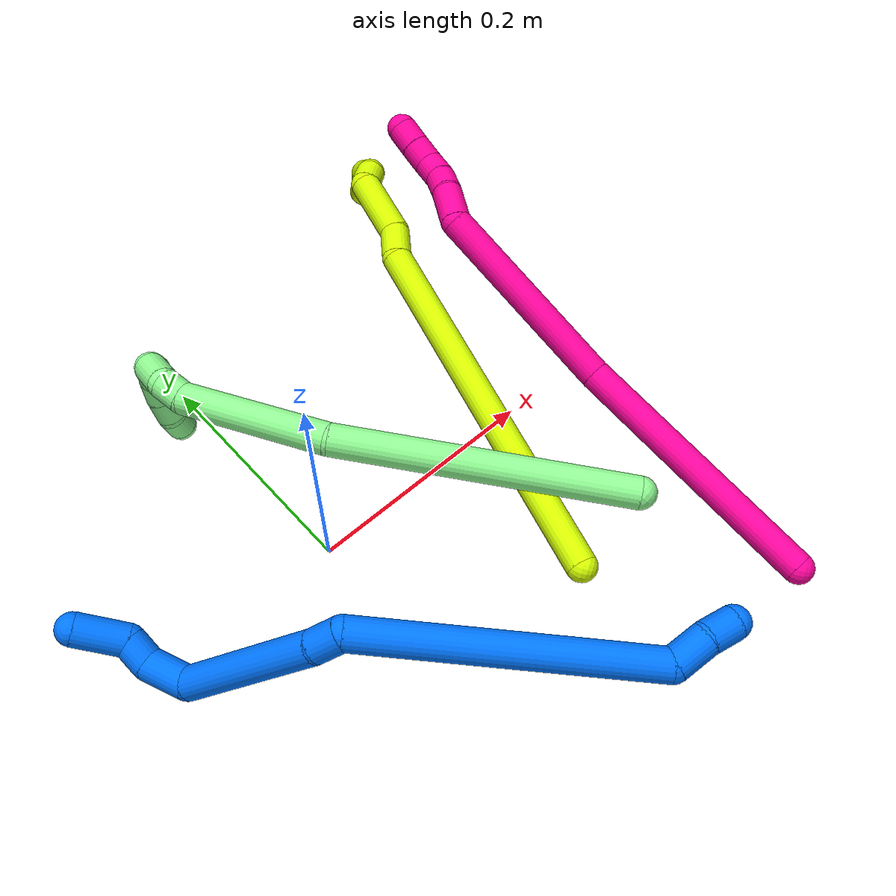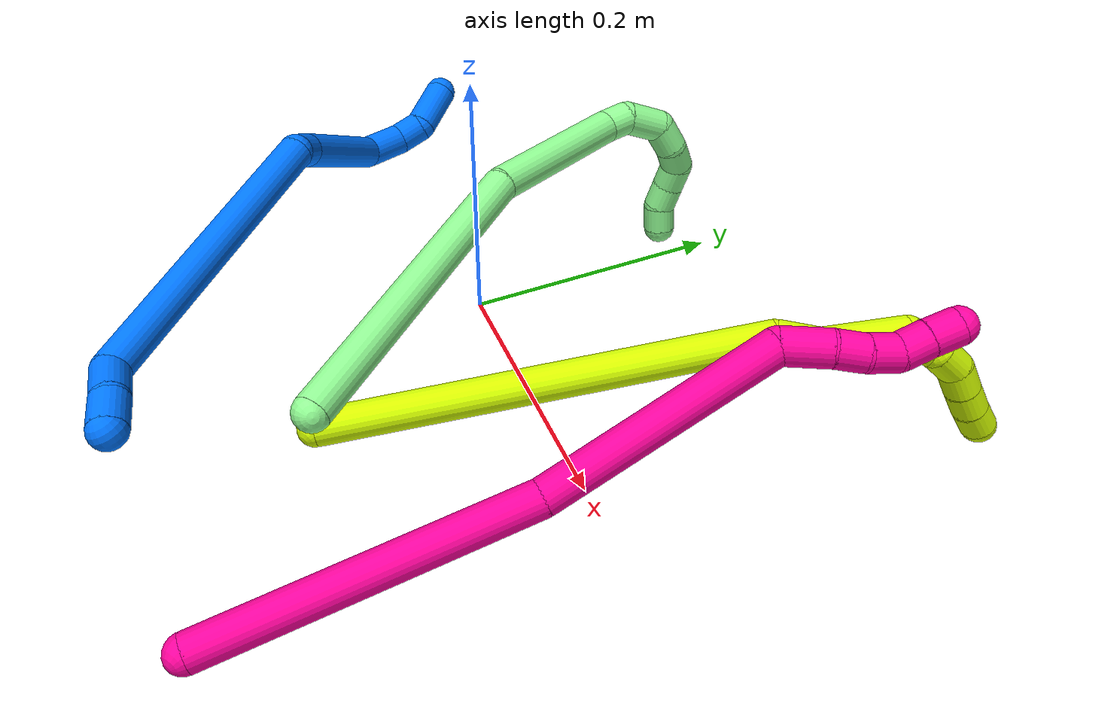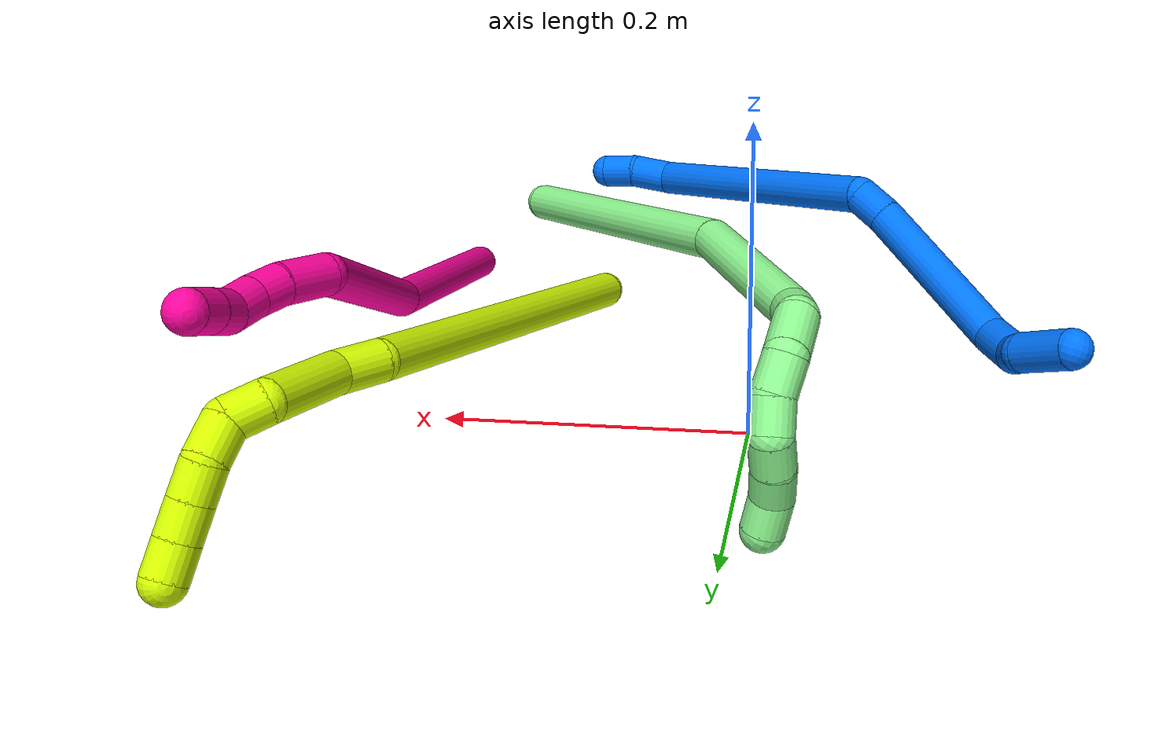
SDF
<sdf version="1.7">
 <world name="default">
  <model name="13">
   <static>0</static>
   <link name="13">
    <collision name="collision-cylinder-e_1_1_4">
     <pose>-0.063509 0.066194 -0.066411 -2.35783 -0.595341 1.27719</pose>
     <geometry><cylinder><radius>0.0125</radius><length>0.226499</length></cylinder></geometry>
     <surface>
      <friction><ode><mu>1.16</mu><mu2>1.16</mu2><slip1>0</slip1><slip2>0</slip2></ode></friction>
      <contact><ode><kp>1e+06</kp><kd>1</kd><max_vel>0</max_vel><min_depth>0.001</min_depth></ode></contact>
     </surface>
    </collision>
    <visual name="visual-cylinder-e_1_1_4">
     <pose>-0.063509 0.066194 -0.066411 -2.35783 -0.595341 1.27719</pose>
     <geometry><cylinder><radius>0.0125</radius><length>0.226499</length></cylinder></geometry>
     <material><ambient>0.564706 0.984314 0.572549 1</ambient></material>
    </visual>
    <collision name="collision-cylinder-e_2_4_5">
     <pose>-0.148864 0.179008 -0.164422 -2.1665 -0.370011 0.678594</pose>
     <geometry><cylinder><radius>0.0125</radius><length>0.120817</length></cylinder></geometry>
     <surface>
      <friction><ode><mu>1.16</mu><mu2>1.16</mu2><slip1>0</slip1><slip2>0</slip2></ode></friction>
      <contact><ode><kp>1e+06</kp><kd>1</kd><max_vel>0</max_vel><min_depth>0.001</min_depth></ode></contact>
     </surface>
    </collision>
    <visual name="visual-cylinder-e_2_4_5">
     <pose>-0.148864 0.179008 -0.164422 -2.1665 -0.370011 0.678594</pose>
     <geometry><cylinder><radius>0.0125</radius><length>0.120817</length></cylinder></geometry>
     <material><ambient>0.564706 0.984314 0.572549 1</ambient></material>
    </visual>
    <collision name="collision-cylinder-e_3_5_6">
     <pose>-0.174827 0.234618 -0.198076 -1.79528 -0.419905 0.522259</pose>
     <geometry><cylinder><radius>0.0125</radius><length>0.020201</length></cylinder></geometry>
     <surface>
      <friction><ode><mu>1.16</mu><mu2>1.16</mu2><slip1>0</slip1><slip2>0</slip2></ode></friction>
      <contact><ode><kp>1e+06</kp><kd>1</kd><max_vel>0</max_vel><min_depth>0.001</min_depth></ode></contact>
     </surface>
    </collision>
    <visual name="visual-cylinder-e_3_5_6">
     <pose>-0.174827 0.234618 -0.198076 -1.79528 -0.419905 0.522259</pose>
     <geometry><cylinder><radius>0.0125</radius><length>0.020201</length></cylinder></geometry>
     <material><ambient>0.564706 0.984314 0.572549 1</ambient></material>
    </visual>
    <collision name="collision-cylinder-e_4_6_7">
     <pose>-0.176651 0.258164 -0.202808 -1.75279 0.153752 -0.184468</pose>
     <geometry><cylinder><radius>0.0125</radius><length>0.029951</length></cylinder></geometry>
     <surface>
      <friction><ode><mu>1.16</mu><mu2>1.16</mu2><slip1>0</slip1><slip2>0</slip2></ode></friction>
      <contact><ode><kp>1e+06</kp><kd>1</kd><max_vel>0</max_vel><min_depth>0.001</min_depth></ode></contact>
     </surface>
    </collision>
    <visual name="visual-cylinder-e_4_6_7">
     <pose>-0.176651 0.258164 -0.202808 -1.75279 0.153752 -0.184468</pose>
     <geometry><cylinder><radius>0.0125</radius><length>0.029951</length></cylinder></geometry>
     <material><ambient>0.564706 0.984314 0.572549 1</ambient></material>
    </visual>
    <collision name="collision-cylinder-e_5_7_8">
     <pose>-0.166397 0.279789 -0.208129 -1.92848 0.811984 -1.1094</pose>
     <geometry><cylinder><radius>0.0125</radius><length>0.02194</length></cylinder></geometry>
     <surface>
      <friction><ode><mu>1.16</mu><mu2>1.16</mu2><slip1>0</slip1><slip2>0</slip2></ode></friction>
      <contact><ode><kp>1e+06</kp><kd>1</kd><max_vel>0</max_vel><min_depth>0.001</min_depth></ode></contact>
     </surface>
    </collision>
    <visual name="visual-cylinder-e_5_7_8">
     <pose>-0.166397 0.279789 -0.208129 -1.92848 0.811984 -1.1094</pose>
     <geometry><cylinder><radius>0.0125</radius><length>0.02194</length></cylinder></geometry>
     <material><ambient>0.564706 0.984314 0.572549 1</ambient></material>
    </visual>
    <collision name="collision-cylinder-e_6_8_9">
     <pose>-0.15125 0.292208 -0.215732 -2.31859 0.777973 -1.50809</pose>
     <geometry><cylinder><radius>0.0125</radius><length>0.02048</length></cylinder></geometry>
     <surface>
      <friction><ode><mu>1.16</mu><mu2>1.16</mu2><slip1>0</slip1><slip2>0</slip2></ode></friction>
      <contact><ode><kp>1e+06</kp><kd>1</kd><max_vel>0</max_vel><min_depth>0.001</min_depth></ode></contact>
     </surface>
    </collision>
    <visual name="visual-cylinder-e_6_8_9">
     <pose>-0.15125 0.292208 -0.215732 -2.31859 0.777973 -1.50809</pose>
     <geometry><cylinder><radius>0.0125</radius><length>0.02048</length></cylinder></geometry>
     <material><ambient>0.564706 0.984314 0.572549 1</ambient></material>
    </visual>
    <collision name="collision-cylinder-e_7_9_10">
     <pose>-0.135425 0.296707 -0.225746 2.97521 1.03534 2.85081</pose>
     <geometry><cylinder><radius>0.0125</radius><length>0.020088</length></cylinder></geometry>
     <surface>
      <friction><ode><mu>1.16</mu><mu2>1.16</mu2><slip1>0</slip1><slip2>0</slip2></ode></friction>
      <contact><ode><kp>1e+06</kp><kd>1</kd><max_vel>0</max_vel><min_depth>0.001</min_depth></ode></contact>
     </surface>
    </collision>
    <visual name="visual-cylinder-e_7_9_10">
     <pose>-0.135425 0.296707 -0.225746 2.97521 1.03534 2.85081</pose>
     <geometry><cylinder><radius>0.0125</radius><length>0.020088</length></cylinder></geometry>
     <material><ambient>0.564706 0.984314 0.572549 1</ambient></material>
    </visual>
    <collision name="collision-cylinder-e_8_10_11">
     <pose>-0.117663 0.294348 -0.234635 2.76639 1.14653 2.56961</pose>
     <geometry><cylinder><radius>0.0125</radius><length>0.020023</length></cylinder></geometry>
     <surface>
      <friction><ode><mu>1.16</mu><mu2>1.16</mu2><slip1>0</slip1><slip2>0</slip2></ode></friction>
      <contact><ode><kp>1e+06</kp><kd>1</kd><max_vel>0</max_vel><min_depth>0.001</min_depth></ode></contact>
     </surface>
    </collision>
    <visual name="visual-cylinder-e_8_10_11">
     <pose>-0.117663 0.294348 -0.234635 2.76639 1.14653 2.56961</pose>
     <geometry><cylinder><radius>0.0125</radius><length>0.020023</length></cylinder></geometry>
     <material><ambient>0.564706 0.984314 0.572549 1</ambient></material>
    </visual>
    <collision name="collision-cylinder-e_9_11_2">
     <pose>-0.099144 0.294886 -0.241215 -2.50058 1.22113 -2.2557</pose>
     <geometry><cylinder><radius>0.0125</radius><length>0.02</length></cylinder></geometry>
     <surface>
      <friction><ode><mu>1.16</mu><mu2>1.16</mu2><slip1>0</slip1><slip2>0</slip2></ode></friction>
      <contact><ode><kp>1e+06</kp><kd>1</kd><max_vel>0</max_vel><min_depth>0.001</min_depth></ode></contact>
     </surface>
    </collision>
    <visual name="visual-cylinder-e_9_11_2">
     <pose>-0.099144 0.294886 -0.241215 -2.50058 1.22113 -2.2557</pose>
     <geometry><cylinder><radius>0.0125</radius><length>0.02</length></cylinder></geometry>
     <material><ambient>0.564706 0.984314 0.572549 1</ambient></material>
    </visual>
    <collision name="collision-sphere-2">
     <pose>-0.089749 0.296935 -0.243961 0 -0 0</pose>
     <geometry><sphere><radius>0.0125</radius></sphere></geometry>
     <surface>
      <friction><ode><mu>1.16</mu><mu2>1.16</mu2><slip1>0</slip1><slip2>0</slip2></ode></friction>
      <contact><ode><kp>1e+06</kp><kd>1</kd><max_vel>0</max_vel><min_depth>0.001</min_depth></ode></contact>
     </surface>
    </collision>
    <visual name="visual-sphere-2">
     <pose>-0.089749 0.296935 -0.243961 0 -0 0</pose>
     <geometry><sphere><radius>0.0125</radius></sphere></geometry>
     <material><ambient>0.564706 0.984314 0.572549 1</ambient></material>
    </visual>
    <collision name="collision-sphere-11">
     <pose>-0.108539 0.292838 -0.238469 0 -0 0</pose>
     <geometry><sphere><radius>0.0125</radius></sphere></geometry>
     <surface>
      <friction><ode><mu>1.16</mu><mu2>1.16</mu2><slip1>0</slip1><slip2>0</slip2></ode></friction>
      <contact><ode><kp>1e+06</kp><kd>1</kd><max_vel>0</max_vel><min_depth>0.001</min_depth></ode></contact>
     </surface>
    </collision>
    <visual name="visual-sphere-11">
     <pose>-0.108539 0.292838 -0.238469 0 -0 0</pose>
     <geometry><sphere><radius>0.0125</radius></sphere></geometry>
     <material><ambient>0.564706 0.984314 0.572549 1</ambient></material>
    </visual>
    <collision name="collision-sphere-10">
     <pose>-0.126787 0.295858 -0.2308 0 -0 0</pose>
     <geometry><sphere><radius>0.0125</radius></sphere></geometry>
     <surface>
      <friction><ode><mu>1.16</mu><mu2>1.16</mu2><slip1>0</slip1><slip2>0</slip2></ode></friction>
      <contact><ode><kp>1e+06</kp><kd>1</kd><max_vel>0</max_vel><min_depth>0.001</min_depth></ode></contact>
     </surface>
    </collision>
    <visual name="visual-sphere-10">
     <pose>-0.126787 0.295858 -0.2308 0 -0 0</pose>
     <geometry><sphere><radius>0.0125</radius></sphere></geometry>
     <material><ambient>0.564706 0.984314 0.572549 1</ambient></material>
    </visual>
    <collision name="collision-sphere-9">
     <pose>-0.144063 0.297556 -0.220692 0 -0 0</pose>
     <geometry><sphere><radius>0.0125</radius></sphere></geometry>
     <surface>
      <friction><ode><mu>1.16</mu><mu2>1.16</mu2><slip1>0</slip1><slip2>0</slip2></ode></friction>
      <contact><ode><kp>1e+06</kp><kd>1</kd><max_vel>0</max_vel><min_depth>0.001</min_depth></ode></contact>
     </surface>
    </collision>
    <visual name="visual-sphere-9">
     <pose>-0.144063 0.297556 -0.220692 0 -0 0</pose>
     <geometry><sphere><radius>0.0125</radius></sphere></geometry>
     <material><ambient>0.564706 0.984314 0.572549 1</ambient></material>
    </visual>
    <collision name="collision-sphere-4">
     <pose>-0.127019 0.132388 -0.132821 0 -0 0</pose>
     <geometry><sphere><radius>0.0125</radius></sphere></geometry>
     <surface>
      <friction><ode><mu>1.16</mu><mu2>1.16</mu2><slip1>0</slip1><slip2>0</slip2></ode></friction>
      <contact><ode><kp>1e+06</kp><kd>1</kd><max_vel>0</max_vel><min_depth>0.001</min_depth></ode></contact>
     </surface>
    </collision>
    <visual name="visual-sphere-4">
     <pose>-0.127019 0.132388 -0.132821 0 -0 0</pose>
     <geometry><sphere><radius>0.0125</radius></sphere></geometry>
     <material><ambient>0.564706 0.984314 0.572549 1</ambient></material>
    </visual>
    <collision name="collision-sphere-1">
     <geometry><sphere><radius>0.0125</radius></sphere></geometry>
     <surface>
      <friction><ode><mu>1.16</mu><mu2>1.16</mu2><slip1>0</slip1><slip2>0</slip2></ode></friction>
      <contact><ode><kp>1e+06</kp><kd>1</kd><max_vel>0</max_vel><min_depth>0.001</min_depth></ode></contact>
     </surface>
    </collision>
    <visual name="visual-sphere-1">
     <geometry><sphere><radius>0.0125</radius></sphere></geometry>
     <material><ambient>0.564706 0.984314 0.572549 1</ambient></material>
    </visual>
    <collision name="collision-sphere-8">
     <pose>-0.158437 0.28686 -0.210771 0 -0 0</pose>
     <geometry><sphere><radius>0.0125</radius></sphere></geometry>
     <surface>
      <friction><ode><mu>1.16</mu><mu2>1.16</mu2><slip1>0</slip1><slip2>0</slip2></ode></friction>
      <contact><ode><kp>1e+06</kp><kd>1</kd><max_vel>0</max_vel><min_depth>0.001</min_depth></ode></contact>
     </surface>
    </collision>
    <visual name="visual-sphere-8">
     <pose>-0.158437 0.28686 -0.210771 0 -0 0</pose>
     <geometry><sphere><radius>0.0125</radius></sphere></geometry>
     <material><ambient>0.564706 0.984314 0.572549 1</ambient></material>
    </visual>
    <collision name="collision-sphere-5">
     <pose>-0.170709 0.225627 -0.196023 0 -0 0</pose>
     <geometry><sphere><radius>0.0125</radius></sphere></geometry>
     <surface>
      <friction><ode><mu>1.16</mu><mu2>1.16</mu2><slip1>0</slip1><slip2>0</slip2></ode></friction>
      <contact><ode><kp>1e+06</kp><kd>1</kd><max_vel>0</max_vel><min_depth>0.001</min_depth></ode></contact>
     </surface>
    </collision>
    <visual name="visual-sphere-5">
     <pose>-0.170709 0.225627 -0.196023 0 -0 0</pose>
     <geometry><sphere><radius>0.0125</radius></sphere></geometry>
     <material><ambient>0.564706 0.984314 0.572549 1</ambient></material>
    </visual>
    <collision name="collision-sphere-6">
     <pose>-0.178945 0.24361 -0.200129 0 -0 0</pose>
     <geometry><sphere><radius>0.0125</radius></sphere></geometry>
     <surface>
      <friction><ode><mu>1.16</mu><mu2>1.16</mu2><slip1>0</slip1><slip2>0</slip2></ode></friction>
      <contact><ode><kp>1e+06</kp><kd>1</kd><max_vel>0</max_vel><min_depth>0.001</min_depth></ode></contact>
     </surface>
    </collision>
    <visual name="visual-sphere-6">
     <pose>-0.178945 0.24361 -0.200129 0 -0 0</pose>
     <geometry><sphere><radius>0.0125</radius></sphere></geometry>
     <material><ambient>0.564706 0.984314 0.572549 1</ambient></material>
    </visual>
    <collision name="collision-sphere-7">
     <pose>-0.174358 0.272719 -0.205486 0 -0 0</pose>
     <geometry><sphere><radius>0.0125</radius></sphere></geometry>
     <surface>
      <friction><ode><mu>1.16</mu><mu2>1.16</mu2><slip1>0</slip1><slip2>0</slip2></ode></friction>
      <contact><ode><kp>1e+06</kp><kd>1</kd><max_vel>0</max_vel><min_depth>0.001</min_depth></ode></contact>
     </surface>
    </collision>
    <visual name="visual-sphere-7">
     <pose>-0.174358 0.272719 -0.205486 0 -0 0</pose>
     <geometry><sphere><radius>0.0125</radius></sphere></geometry>
     <material><ambient>0.564706 0.984314 0.572549 1</ambient></material>
    </visual>
    <inertial>
     <pose>-0.110001 0.157934 -0.136049 0 -0 0</pose>
     <mass>0.5</mass>
     <inertia>
      <ixx>0.001202</ixx>
      <ixy>0</ixy>
      <ixz>0</ixz>
      <iyy>0.001022</iyy>
      <iyz>0</iyz>
      <izz>-0.000117</izz>
     </inertia>
    </inertial>
   </link>
   <pose>0.165833 -0.163034 0.112778 -0.379905 1.01534 -0.552398</pose>
  </model>
  <model name="14">
   <static>0</static>
   <link name="14">
    <collision name="collision-cylinder-e_1_1_4">
     <pose>-0.010288 -0.004425 0.003241 0.9387 -1.08095 -0.590844</pose>
     <geometry><cylinder><radius>0.0125</radius><length>0.023317</length></cylinder></geometry>
     <surface>
      <friction><ode><mu>1.16</mu><mu2>1.16</mu2><slip1>0</slip1><slip2>0</slip2></ode></friction>
      <contact><ode><kp>1e+06</kp><kd>1</kd><max_vel>0</max_vel><min_depth>0.001</min_depth></ode></contact>
     </surface>
    </collision>
    <visual name="visual-cylinder-e_1_1_4">
     <pose>-0.010288 -0.004425 0.003241 0.9387 -1.08095 -0.590844</pose>
     <geometry><cylinder><radius>0.0125</radius><length>0.023317</length></cylinder></geometry>
     <material><ambient>0 0.462745 1 1</ambient></material>
    </visual>
    <collision name="collision-cylinder-e_2_4_5">
     <pose>-0.032736 -0.01671 0.008159 1.36051 -0.986859 -0.820834</pose>
     <geometry><cylinder><radius>0.0125</radius><length>0.029153</length></cylinder></geometry>
     <surface>
      <friction><ode><mu>1.16</mu><mu2>1.16</mu2><slip1>0</slip1><slip2>0</slip2></ode></friction>
      <contact><ode><kp>1e+06</kp><kd>1</kd><max_vel>0</max_vel><min_depth>0.001</min_depth></ode></contact>
     </surface>
    </collision>
    <visual name="visual-cylinder-e_2_4_5">
     <pose>-0.032736 -0.01671 0.008159 1.36051 -0.986859 -0.820834</pose>
     <geometry><cylinder><radius>0.0125</radius><length>0.029153</length></cylinder></geometry>
     <material><ambient>0 0.462745 1 1</ambient></material>
    </visual>
    <collision name="collision-cylinder-e_3_5_6">
     <pose>-0.151512 -0.006409 0.018814 -1.11169 -1.38302 0.94998</pose>
     <geometry><cylinder><radius>0.0125</radius><length>0.217045</length></cylinder></geometry>
     <surface>
      <friction><ode><mu>1.16</mu><mu2>1.16</mu2><slip1>0</slip1><slip2>0</slip2></ode></friction>
      <contact><ode><kp>1e+06</kp><kd>1</kd><max_vel>0</max_vel><min_depth>0.001</min_depth></ode></contact>
     </surface>
    </collision>
    <visual name="visual-cylinder-e_3_5_6">
     <pose>-0.151512 -0.006409 0.018814 -1.11169 -1.38302 0.94998</pose>
     <geometry><cylinder><radius>0.0125</radius><length>0.217045</length></cylinder></geometry>
     <material><ambient>0 0.462745 1 1</ambient></material>
    </visual>
    <collision name="collision-cylinder-e_4_6_7">
     <pose>-0.268182 0.008077 0.023165 2.47025 -1.03955 -2.04663</pose>
     <geometry><cylinder><radius>0.0125</radius><length>0.023324</length></cylinder></geometry>
     <surface>
      <friction><ode><mu>1.16</mu><mu2>1.16</mu2><slip1>0</slip1><slip2>0</slip2></ode></friction>
      <contact><ode><kp>1e+06</kp><kd>1</kd><max_vel>0</max_vel><min_depth>0.001</min_depth></ode></contact>
     </surface>
    </collision>
    <visual name="visual-cylinder-e_4_6_7">
     <pose>-0.268182 0.008077 0.023165 2.47025 -1.03955 -2.04663</pose>
     <geometry><cylinder><radius>0.0125</radius><length>0.023324</length></cylinder></geometry>
     <material><ambient>0 0.462745 1 1</ambient></material>
    </visual>
    <collision name="collision-cylinder-e_5_7_8">
     <pose>-0.325918 -0.00529 -0.009066 2.80396 -1.02043 -2.55035</pose>
     <geometry><cylinder><radius>0.0125</radius><length>0.111884</length></cylinder></geometry>
     <surface>
      <friction><ode><mu>1.16</mu><mu2>1.16</mu2><slip1>0</slip1><slip2>0</slip2></ode></friction>
      <contact><ode><kp>1e+06</kp><kd>1</kd><max_vel>0</max_vel><min_depth>0.001</min_depth></ode></contact>
     </surface>
    </collision>
    <visual name="visual-cylinder-e_5_7_8">
     <pose>-0.325918 -0.00529 -0.009066 2.80396 -1.02043 -2.55035</pose>
     <geometry><cylinder><radius>0.0125</radius><length>0.111884</length></cylinder></geometry>
     <material><ambient>0 0.462745 1 1</ambient></material>
    </visual>
    <collision name="collision-cylinder-e_6_8_9">
     <pose>-0.388388 -0.007305 -0.040687 -2.05263 -1.04088 1.51585</pose>
     <geometry><cylinder><radius>0.0125</radius><length>0.034278</length></cylinder></geometry>
     <surface>
      <friction><ode><mu>1.16</mu><mu2>1.16</mu2><slip1>0</slip1><slip2>0</slip2></ode></friction>
      <contact><ode><kp>1e+06</kp><kd>1</kd><max_vel>0</max_vel><min_depth>0.001</min_depth></ode></contact>
     </surface>
    </collision>
    <visual name="visual-cylinder-e_6_8_9">
     <pose>-0.388388 -0.007305 -0.040687 -2.05263 -1.04088 1.51585</pose>
     <geometry><cylinder><radius>0.0125</radius><length>0.034278</length></cylinder></geometry>
     <material><ambient>0 0.462745 1 1</ambient></material>
    </visual>
    <collision name="collision-cylinder-e_7_9_10">
     <pose>-0.409791 0.008863 -0.043957 -1.48336 -0.660032 0.608188</pose>
     <geometry><cylinder><radius>0.0125</radius><length>0.021578</length></cylinder></geometry>
     <surface>
      <friction><ode><mu>1.16</mu><mu2>1.16</mu2><slip1>0</slip1><slip2>0</slip2></ode></friction>
      <contact><ode><kp>1e+06</kp><kd>1</kd><max_vel>0</max_vel><min_depth>0.001</min_depth></ode></contact>
     </surface>
    </collision>
    <visual name="visual-cylinder-e_7_9_10">
     <pose>-0.409791 0.008863 -0.043957 -1.48336 -0.660032 0.608188</pose>
     <geometry><cylinder><radius>0.0125</radius><length>0.021578</length></cylinder></geometry>
     <material><ambient>0 0.462745 1 1</ambient></material>
    </visual>
    <collision name="collision-cylinder-e_8_10_2">
     <pose>-0.434682 0.02265 -0.03807 -0.800165 -1.1869 0.555771</pose>
     <geometry><cylinder><radius>0.0125</radius><length>0.03942</length></cylinder></geometry>
     <surface>
      <friction><ode><mu>1.16</mu><mu2>1.16</mu2><slip1>0</slip1><slip2>0</slip2></ode></friction>
      <contact><ode><kp>1e+06</kp><kd>1</kd><max_vel>0</max_vel><min_depth>0.001</min_depth></ode></contact>
     </surface>
    </collision>
    <visual name="visual-cylinder-e_8_10_2">
     <pose>-0.434682 0.02265 -0.03807 -0.800165 -1.1869 0.555771</pose>
     <geometry><cylinder><radius>0.0125</radius><length>0.03942</length></cylinder></geometry>
     <material><ambient>0 0.462745 1 1</ambient></material>
    </visual>
    <collision name="collision-sphere-2">
     <pose>-0.452958 0.027946 -0.032928 0 -0 0</pose>
     <geometry><sphere><radius>0.0125</radius></sphere></geometry>
     <surface>
      <friction><ode><mu>1.16</mu><mu2>1.16</mu2><slip1>0</slip1><slip2>0</slip2></ode></friction>
      <contact><ode><kp>1e+06</kp><kd>1</kd><max_vel>0</max_vel><min_depth>0.001</min_depth></ode></contact>
     </surface>
    </collision>
    <visual name="visual-sphere-2">
     <pose>-0.452958 0.027946 -0.032928 0 -0 0</pose>
     <geometry><sphere><radius>0.0125</radius></sphere></geometry>
     <material><ambient>0 0.462745 1 1</ambient></material>
    </visual>
    <collision name="collision-sphere-10">
     <pose>-0.416407 0.017353 -0.043213 0 -0 0</pose>
     <geometry><sphere><radius>0.0125</radius></sphere></geometry>
     <surface>
      <friction><ode><mu>1.16</mu><mu2>1.16</mu2><slip1>0</slip1><slip2>0</slip2></ode></friction>
      <contact><ode><kp>1e+06</kp><kd>1</kd><max_vel>0</max_vel><min_depth>0.001</min_depth></ode></contact>
     </surface>
    </collision>
    <visual name="visual-sphere-10">
     <pose>-0.416407 0.017353 -0.043213 0 -0 0</pose>
     <geometry><sphere><radius>0.0125</radius></sphere></geometry>
     <material><ambient>0 0.462745 1 1</ambient></material>
    </visual>
    <collision name="collision-sphere-9">
     <pose>-0.403176 0.000372 -0.044701 0 -0 0</pose>
     <geometry><sphere><radius>0.0125</radius></sphere></geometry>
     <surface>
      <friction><ode><mu>1.16</mu><mu2>1.16</mu2><slip1>0</slip1><slip2>0</slip2></ode></friction>
      <contact><ode><kp>1e+06</kp><kd>1</kd><max_vel>0</max_vel><min_depth>0.001</min_depth></ode></contact>
     </surface>
    </collision>
    <visual name="visual-sphere-9">
     <pose>-0.403176 0.000372 -0.044701 0 -0 0</pose>
     <geometry><sphere><radius>0.0125</radius></sphere></geometry>
     <material><ambient>0 0.462745 1 1</ambient></material>
    </visual>
    <collision name="collision-sphere-4">
     <pose>-0.020575 -0.008851 0.006482 0 -0 0</pose>
     <geometry><sphere><radius>0.0125</radius></sphere></geometry>
     <surface>
      <friction><ode><mu>1.16</mu><mu2>1.16</mu2><slip1>0</slip1><slip2>0</slip2></ode></friction>
      <contact><ode><kp>1e+06</kp><kd>1</kd><max_vel>0</max_vel><min_depth>0.001</min_depth></ode></contact>
     </surface>
    </collision>
    <visual name="visual-sphere-4">
     <pose>-0.020575 -0.008851 0.006482 0 -0 0</pose>
     <geometry><sphere><radius>0.0125</radius></sphere></geometry>
     <material><ambient>0 0.462745 1 1</ambient></material>
    </visual>
    <collision name="collision-sphere-1">
     <geometry><sphere><radius>0.0125</radius></sphere></geometry>
     <surface>
      <friction><ode><mu>1.16</mu><mu2>1.16</mu2><slip1>0</slip1><slip2>0</slip2></ode></friction>
      <contact><ode><kp>1e+06</kp><kd>1</kd><max_vel>0</max_vel><min_depth>0.001</min_depth></ode></contact>
     </surface>
    </collision>
    <visual name="visual-sphere-1">
     <geometry><sphere><radius>0.0125</radius></sphere></geometry>
     <material><ambient>0 0.462745 1 1</ambient></material>
    </visual>
    <collision name="collision-sphere-8">
     <pose>-0.3736 -0.014981 -0.036672 0 -0 0</pose>
     <geometry><sphere><radius>0.0125</radius></sphere></geometry>
     <surface>
      <friction><ode><mu>1.16</mu><mu2>1.16</mu2><slip1>0</slip1><slip2>0</slip2></ode></friction>
      <contact><ode><kp>1e+06</kp><kd>1</kd><max_vel>0</max_vel><min_depth>0.001</min_depth></ode></contact>
     </surface>
    </collision>
    <visual name="visual-sphere-8">
     <pose>-0.3736 -0.014981 -0.036672 0 -0 0</pose>
     <geometry><sphere><radius>0.0125</radius></sphere></geometry>
     <material><ambient>0 0.462745 1 1</ambient></material>
    </visual>
    <collision name="collision-sphere-5">
     <pose>-0.044897 -0.024569 0.009837 0 -0 0</pose>
     <geometry><sphere><radius>0.0125</radius></sphere></geometry>
     <surface>
      <friction><ode><mu>1.16</mu><mu2>1.16</mu2><slip1>0</slip1><slip2>0</slip2></ode></friction>
      <contact><ode><kp>1e+06</kp><kd>1</kd><max_vel>0</max_vel><min_depth>0.001</min_depth></ode></contact>
     </surface>
    </collision>
    <visual name="visual-sphere-5">
     <pose>-0.044897 -0.024569 0.009837 0 -0 0</pose>
     <geometry><sphere><radius>0.0125</radius></sphere></geometry>
     <material><ambient>0 0.462745 1 1</ambient></material>
    </visual>
    <collision name="collision-sphere-6">
     <pose>-0.258127 0.011752 0.027791 0 -0 0</pose>
     <geometry><sphere><radius>0.0125</radius></sphere></geometry>
     <surface>
      <friction><ode><mu>1.16</mu><mu2>1.16</mu2><slip1>0</slip1><slip2>0</slip2></ode></friction>
      <contact><ode><kp>1e+06</kp><kd>1</kd><max_vel>0</max_vel><min_depth>0.001</min_depth></ode></contact>
     </surface>
    </collision>
    <visual name="visual-sphere-6">
     <pose>-0.258127 0.011752 0.027791 0 -0 0</pose>
     <geometry><sphere><radius>0.0125</radius></sphere></geometry>
     <material><ambient>0 0.462745 1 1</ambient></material>
    </visual>
    <collision name="collision-sphere-7">
     <pose>-0.278237 0.004402 0.018539 0 -0 0</pose>
     <geometry><sphere><radius>0.0125</radius></sphere></geometry>
     <surface>
      <friction><ode><mu>1.16</mu><mu2>1.16</mu2><slip1>0</slip1><slip2>0</slip2></ode></friction>
      <contact><ode><kp>1e+06</kp><kd>1</kd><max_vel>0</max_vel><min_depth>0.001</min_depth></ode></contact>
     </surface>
    </collision>
    <visual name="visual-sphere-7">
     <pose>-0.278237 0.004402 0.018539 0 -0 0</pose>
     <geometry><sphere><radius>0.0125</radius></sphere></geometry>
     <material><ambient>0 0.462745 1 1</ambient></material>
    </visual>
    <inertial>
     <pose>-0.232181 -0.003102 0.000158 0 -0 0</pose>
     <mass>0.5</mass>
     <inertia>
      <ixx>0.000107</ixx>
      <ixy>0</ixy>
      <ixz>0</ixz>
      <iyy>0.001068</iyy>
      <iyz>0</iyz>
      <izz>0.000838</izz>
     </inertia>
    </inertial>
   </link>
   <pose>0.137625 -0.273932 0.116289 0.410236 -0.045069 -0.673148</pose>
  </model>
  <model name="15">
   <static>0</static>
   <link name="15">
    <collision name="collision-cylinder-e_1_1_4">
     <pose>0.004002 0.110221 0.106577 -0.802207 0.026097 -0.011068</pose>
     <geometry><cylinder><radius>0.0125</radius><length>0.306746</length></cylinder></geometry>
     <surface>
      <friction><ode><mu>1.16</mu><mu2>1.16</mu2><slip1>0</slip1><slip2>0</slip2></ode></friction>
      <contact><ode><kp>1e+06</kp><kd>1</kd><max_vel>0</max_vel><min_depth>0.001</min_depth></ode></contact>
     </surface>
    </collision>
    <visual name="visual-cylinder-e_1_1_4">
     <pose>0.004002 0.110221 0.106577 -0.802207 0.026097 -0.011068</pose>
     <geometry><cylinder><radius>0.0125</radius><length>0.306746</length></cylinder></geometry>
     <material><ambient>0.835294 1 0 1</ambient></material>
    </visual>
    <collision name="collision-cylinder-e_2_4_5">
     <pose>0.007245 0.234215 0.218194 -1.21995 -0.051754 0.036174</pose>
     <geometry><cylinder><radius>0.0125</radius><length>0.029372</length></cylinder></geometry>
     <surface>
      <friction><ode><mu>1.16</mu><mu2>1.16</mu2><slip1>0</slip1><slip2>0</slip2></ode></friction>
      <contact><ode><kp>1e+06</kp><kd>1</kd><max_vel>0</max_vel><min_depth>0.001</min_depth></ode></contact>
     </surface>
    </collision>
    <visual name="visual-cylinder-e_2_4_5">
     <pose>0.007245 0.234215 0.218194 -1.21995 -0.051754 0.036174</pose>
     <geometry><cylinder><radius>0.0125</radius><length>0.029372</length></cylinder></geometry>
     <material><ambient>0.835294 1 0 1</ambient></material>
    </visual>
    <collision name="collision-cylinder-e_3_5_6">
     <pose>0.005376 0.269515 0.243226 -0.822396 -0.037745 0.016461</pose>
     <geometry><cylinder><radius>0.0125</radius><length>0.058798</length></cylinder></geometry>
     <surface>
      <friction><ode><mu>1.16</mu><mu2>1.16</mu2><slip1>0</slip1><slip2>0</slip2></ode></friction>
      <contact><ode><kp>1e+06</kp><kd>1</kd><max_vel>0</max_vel><min_depth>0.001</min_depth></ode></contact>
     </surface>
    </collision>
    <visual name="visual-cylinder-e_3_5_6">
     <pose>0.005376 0.269515 0.243226 -0.822396 -0.037745 0.016461</pose>
     <geometry><cylinder><radius>0.0125</radius><length>0.058798</length></cylinder></geometry>
     <material><ambient>0.835294 1 0 1</ambient></material>
    </visual>
    <collision name="collision-cylinder-e_4_6_7">
     <pose>0.001293 0.30144 0.263788 -1.51594 -0.278116 0.26344</pose>
     <geometry><cylinder><radius>0.0125</radius><length>0.021657</length></cylinder></geometry>
     <surface>
      <friction><ode><mu>1.16</mu><mu2>1.16</mu2><slip1>0</slip1><slip2>0</slip2></ode></friction>
      <contact><ode><kp>1e+06</kp><kd>1</kd><max_vel>0</max_vel><min_depth>0.001</min_depth></ode></contact>
     </surface>
    </collision>
    <visual name="visual-cylinder-e_4_6_7">
     <pose>0.001293 0.30144 0.263788 -1.51594 -0.278116 0.26344</pose>
     <geometry><cylinder><radius>0.0125</radius><length>0.021657</length></cylinder></geometry>
     <material><ambient>0.835294 1 0 1</ambient></material>
    </visual>
    <collision name="collision-cylinder-e_5_7_8">
     <pose>-0.010286 0.318396 0.268016 -1.06208 -0.853273 0.521769</pose>
     <geometry><cylinder><radius>0.0125</radius><length>0.022845</length></cylinder></geometry>
     <surface>
      <friction><ode><mu>1.16</mu><mu2>1.16</mu2><slip1>0</slip1><slip2>0</slip2></ode></friction>
      <contact><ode><kp>1e+06</kp><kd>1</kd><max_vel>0</max_vel><min_depth>0.001</min_depth></ode></contact>
     </surface>
    </collision>
    <visual name="visual-cylinder-e_5_7_8">
     <pose>-0.010286 0.318396 0.268016 -1.06208 -0.853273 0.521769</pose>
     <geometry><cylinder><radius>0.0125</radius><length>0.022845</length></cylinder></geometry>
     <material><ambient>0.835294 1 0 1</ambient></material>
    </visual>
    <collision name="collision-cylinder-e_6_8_9">
     <pose>-0.027978 0.329469 0.271909 -1.51881 -1.10925 1.06324</pose>
     <geometry><cylinder><radius>0.0125</radius><length>0.020297</length></cylinder></geometry>
     <surface>
      <friction><ode><mu>1.16</mu><mu2>1.16</mu2><slip1>0</slip1><slip2>0</slip2></ode></friction>
      <contact><ode><kp>1e+06</kp><kd>1</kd><max_vel>0</max_vel><min_depth>0.001</min_depth></ode></contact>
     </surface>
    </collision>
    <visual name="visual-cylinder-e_6_8_9">
     <pose>-0.027978 0.329469 0.271909 -1.51881 -1.10925 1.06324</pose>
     <geometry><cylinder><radius>0.0125</radius><length>0.020297</length></cylinder></geometry>
     <material><ambient>0.835294 1 0 1</ambient></material>
    </visual>
    <collision name="collision-cylinder-e_7_9_10">
     <pose>-0.046106 0.338428 0.272863 -1.41055 -1.10862 0.970066</pose>
     <geometry><cylinder><radius>0.0125</radius><length>0.020201</length></cylinder></geometry>
     <surface>
      <friction><ode><mu>1.16</mu><mu2>1.16</mu2><slip1>0</slip1><slip2>0</slip2></ode></friction>
      <contact><ode><kp>1e+06</kp><kd>1</kd><max_vel>0</max_vel><min_depth>0.001</min_depth></ode></contact>
     </surface>
    </collision>
    <visual name="visual-cylinder-e_7_9_10">
     <pose>-0.046106 0.338428 0.272863 -1.41055 -1.10862 0.970066</pose>
     <geometry><cylinder><radius>0.0125</radius><length>0.020201</length></cylinder></geometry>
     <material><ambient>0.835294 1 0 1</ambient></material>
    </visual>
    <collision name="collision-cylinder-e_8_10_2">
     <pose>-0.064018 0.347345 0.275047 -1.25393 -1.08318 0.822033</pose>
     <geometry><cylinder><radius>0.0125</radius><length>0.020084</length></cylinder></geometry>
     <surface>
      <friction><ode><mu>1.16</mu><mu2>1.16</mu2><slip1>0</slip1><slip2>0</slip2></ode></friction>
      <contact><ode><kp>1e+06</kp><kd>1</kd><max_vel>0</max_vel><min_depth>0.001</min_depth></ode></contact>
     </surface>
    </collision>
    <visual name="visual-cylinder-e_8_10_2">
     <pose>-0.064018 0.347345 0.275047 -1.25393 -1.08318 0.822033</pose>
     <geometry><cylinder><radius>0.0125</radius><length>0.020084</length></cylinder></geometry>
     <material><ambient>0.835294 1 0 1</ambient></material>
    </visual>
    <collision name="collision-sphere-2">
     <pose>-0.07289 0.351816 0.276513 0 -0 0</pose>
     <geometry><sphere><radius>0.0125</radius></sphere></geometry>
     <surface>
      <friction><ode><mu>1.16</mu><mu2>1.16</mu2><slip1>0</slip1><slip2>0</slip2></ode></friction>
      <contact><ode><kp>1e+06</kp><kd>1</kd><max_vel>0</max_vel><min_depth>0.001</min_depth></ode></contact>
     </surface>
    </collision>
    <visual name="visual-sphere-2">
     <pose>-0.07289 0.351816 0.276513 0 -0 0</pose>
     <geometry><sphere><radius>0.0125</radius></sphere></geometry>
     <material><ambient>0.835294 1 0 1</ambient></material>
    </visual>
    <collision name="collision-sphere-10">
     <pose>-0.055147 0.342874 0.273581 0 -0 0</pose>
     <geometry><sphere><radius>0.0125</radius></sphere></geometry>
     <surface>
      <friction><ode><mu>1.16</mu><mu2>1.16</mu2><slip1>0</slip1><slip2>0</slip2></ode></friction>
      <contact><ode><kp>1e+06</kp><kd>1</kd><max_vel>0</max_vel><min_depth>0.001</min_depth></ode></contact>
     </surface>
    </collision>
    <visual name="visual-sphere-10">
     <pose>-0.055147 0.342874 0.273581 0 -0 0</pose>
     <geometry><sphere><radius>0.0125</radius></sphere></geometry>
     <material><ambient>0.835294 1 0 1</ambient></material>
    </visual>
    <collision name="collision-sphere-9">
     <pose>-0.037065 0.333982 0.272144 0 -0 0</pose>
     <geometry><sphere><radius>0.0125</radius></sphere></geometry>
     <surface>
      <friction><ode><mu>1.16</mu><mu2>1.16</mu2><slip1>0</slip1><slip2>0</slip2></ode></friction>
      <contact><ode><kp>1e+06</kp><kd>1</kd><max_vel>0</max_vel><min_depth>0.001</min_depth></ode></contact>
     </surface>
    </collision>
    <visual name="visual-sphere-9">
     <pose>-0.037065 0.333982 0.272144 0 -0 0</pose>
     <geometry><sphere><radius>0.0125</radius></sphere></geometry>
     <material><ambient>0.835294 1 0 1</ambient></material>
    </visual>
    <collision name="collision-sphere-4">
     <pose>0.008004 0.220442 0.213154 0 -0 0</pose>
     <geometry><sphere><radius>0.0125</radius></sphere></geometry>
     <surface>
      <friction><ode><mu>1.16</mu><mu2>1.16</mu2><slip1>0</slip1><slip2>0</slip2></ode></friction>
      <contact><ode><kp>1e+06</kp><kd>1</kd><max_vel>0</max_vel><min_depth>0.001</min_depth></ode></contact>
     </surface>
    </collision>
    <visual name="visual-sphere-4">
     <pose>0.008004 0.220442 0.213154 0 -0 0</pose>
     <geometry><sphere><radius>0.0125</radius></sphere></geometry>
     <material><ambient>0.835294 1 0 1</ambient></material>
    </visual>
    <collision name="collision-sphere-1">
     <geometry><sphere><radius>0.0125</radius></sphere></geometry>
     <surface>
      <friction><ode><mu>1.16</mu><mu2>1.16</mu2><slip1>0</slip1><slip2>0</slip2></ode></friction>
      <contact><ode><kp>1e+06</kp><kd>1</kd><max_vel>0</max_vel><min_depth>0.001</min_depth></ode></contact>
     </surface>
    </collision>
    <visual name="visual-sphere-1">
     <geometry><sphere><radius>0.0125</radius></sphere></geometry>
     <material><ambient>0.835294 1 0 1</ambient></material>
    </visual>
    <collision name="collision-sphere-8">
     <pose>-0.018892 0.324955 0.271674 0 -0 0</pose>
     <geometry><sphere><radius>0.0125</radius></sphere></geometry>
     <surface>
      <friction><ode><mu>1.16</mu><mu2>1.16</mu2><slip1>0</slip1><slip2>0</slip2></ode></friction>
      <contact><ode><kp>1e+06</kp><kd>1</kd><max_vel>0</max_vel><min_depth>0.001</min_depth></ode></contact>
     </surface>
    </collision>
    <visual name="visual-sphere-8">
     <pose>-0.018892 0.324955 0.271674 0 -0 0</pose>
     <geometry><sphere><radius>0.0125</radius></sphere></geometry>
     <material><ambient>0.835294 1 0 1</ambient></material>
    </visual>
    <collision name="collision-sphere-5">
     <pose>0.006485 0.247988 0.223235 0 -0 0</pose>
     <geometry><sphere><radius>0.0125</radius></sphere></geometry>
     <surface>
      <friction><ode><mu>1.16</mu><mu2>1.16</mu2><slip1>0</slip1><slip2>0</slip2></ode></friction>
      <contact><ode><kp>1e+06</kp><kd>1</kd><max_vel>0</max_vel><min_depth>0.001</min_depth></ode></contact>
     </surface>
    </collision>
    <visual name="visual-sphere-5">
     <pose>0.006485 0.247988 0.223235 0 -0 0</pose>
     <geometry><sphere><radius>0.0125</radius></sphere></geometry>
     <material><ambient>0.835294 1 0 1</ambient></material>
    </visual>
    <collision name="collision-sphere-6">
     <pose>0.004266 0.291043 0.263217 0 -0 0</pose>
     <geometry><sphere><radius>0.0125</radius></sphere></geometry>
     <surface>
      <friction><ode><mu>1.16</mu><mu2>1.16</mu2><slip1>0</slip1><slip2>0</slip2></ode></friction>
      <contact><ode><kp>1e+06</kp><kd>1</kd><max_vel>0</max_vel><min_depth>0.001</min_depth></ode></contact>
     </surface>
    </collision>
    <visual name="visual-sphere-6">
     <pose>0.004266 0.291043 0.263217 0 -0 0</pose>
     <geometry><sphere><radius>0.0125</radius></sphere></geometry>
     <material><ambient>0.835294 1 0 1</ambient></material>
    </visual>
    <collision name="collision-sphere-7">
     <pose>-0.00168 0.311837 0.264358 0 -0 0</pose>
     <geometry><sphere><radius>0.0125</radius></sphere></geometry>
     <surface>
      <friction><ode><mu>1.16</mu><mu2>1.16</mu2><slip1>0</slip1><slip2>0</slip2></ode></friction>
      <contact><ode><kp>1e+06</kp><kd>1</kd><max_vel>0</max_vel><min_depth>0.001</min_depth></ode></contact>
     </surface>
    </collision>
    <visual name="visual-sphere-7">
     <pose>-0.00168 0.311837 0.264358 0 -0 0</pose>
     <geometry><sphere><radius>0.0125</radius></sphere></geometry>
     <material><ambient>0.835294 1 0 1</ambient></material>
    </visual>
    <inertial>
     <pose>-0.002471 0.181676 0.163585 0 -0 0</pose>
     <mass>0.5</mass>
     <inertia>
      <ixx>0.002413</ixx>
      <ixy>0</ixy>
      <ixz>0</ixz>
      <iyy>0.001704</iyy>
      <iyz>0</iyz>
      <izz>-0.001794</izz>
     </inertia>
    </inertial>
   </link>
   <pose>0.120262 -0.157661 0.048461 -0.140971 -1.40935 -0.861342</pose>
  </model>
  <model name="18">
   <static>0</static>
   <link name="18">
    <collision name="collision-cylinder-e_1_1_4">
     <pose>-0.011425 -0.056559 0.092139 0.550536 -0.105284 -0.029761</pose>
     <geometry><cylinder><radius>0.0125</radius><length>0.217431</length></cylinder></geometry>
     <surface>
      <friction><ode><mu>1.16</mu><mu2>1.16</mu2><slip1>0</slip1><slip2>0</slip2></ode></friction>
      <contact><ode><kp>1e+06</kp><kd>1</kd><max_vel>0</max_vel><min_depth>0.001</min_depth></ode></contact>
     </surface>
    </collision>
    <visual name="visual-cylinder-e_1_1_4">
     <pose>-0.011425 -0.056559 0.092139 0.550536 -0.105284 -0.029761</pose>
     <geometry><cylinder><radius>0.0125</radius><length>0.217431</length></cylinder></geometry>
     <material><ambient>1 0.007843 0.615686 1</ambient></material>
    </visual>
    <collision name="collision-cylinder-e_2_4_5">
     <pose>-0.049937 -0.151545 0.254056 0.503389 -0.327769 -0.084997</pose>
     <geometry><cylinder><radius>0.0125</radius><length>0.168278</length></cylinder></geometry>
     <surface>
      <friction><ode><mu>1.16</mu><mu2>1.16</mu2><slip1>0</slip1><slip2>0</slip2></ode></friction>
      <contact><ode><kp>1e+06</kp><kd>1</kd><max_vel>0</max_vel><min_depth>0.001</min_depth></ode></contact>
     </surface>
    </collision>
    <visual name="visual-cylinder-e_2_4_5">
     <pose>-0.049937 -0.151545 0.254056 0.503389 -0.327769 -0.084997</pose>
     <geometry><cylinder><radius>0.0125</radius><length>0.168278</length></cylinder></geometry>
     <material><ambient>1 0.007843 0.615686 1</ambient></material>
    </visual>
    <collision name="collision-cylinder-e_3_5_6">
     <pose>-0.077266 -0.204301 0.331794 1.0637 -0.014801 -0.008709</pose>
     <geometry><cylinder><radius>0.0125</radius><length>0.032784</length></cylinder></geometry>
     <surface>
      <friction><ode><mu>1.16</mu><mu2>1.16</mu2><slip1>0</slip1><slip2>0</slip2></ode></friction>
      <contact><ode><kp>1e+06</kp><kd>1</kd><max_vel>0</max_vel><min_depth>0.001</min_depth></ode></contact>
     </surface>
    </collision>
    <visual name="visual-cylinder-e_3_5_6">
     <pose>-0.077266 -0.204301 0.331794 1.0637 -0.014801 -0.008709</pose>
     <geometry><cylinder><radius>0.0125</radius><length>0.032784</length></cylinder></geometry>
     <material><ambient>1 0.007843 0.615686 1</ambient></material>
    </visual>
    <collision name="collision-cylinder-e_4_6_7">
     <pose>-0.075893 -0.22708 0.344955 1.01911 0.161437 0.090342</pose>
     <geometry><cylinder><radius>0.0125</radius><length>0.020108</length></cylinder></geometry>
     <surface>
      <friction><ode><mu>1.16</mu><mu2>1.16</mu2><slip1>0</slip1><slip2>0</slip2></ode></friction>
      <contact><ode><kp>1e+06</kp><kd>1</kd><max_vel>0</max_vel><min_depth>0.001</min_depth></ode></contact>
     </surface>
    </collision>
    <visual name="visual-cylinder-e_4_6_7">
     <pose>-0.075893 -0.22708 0.344955 1.01911 0.161437 0.090342</pose>
     <geometry><cylinder><radius>0.0125</radius><length>0.020108</length></cylinder></geometry>
     <material><ambient>1 0.007843 0.615686 1</ambient></material>
    </visual>
    <collision name="collision-cylinder-e_5_7_8">
     <pose>-0.072728 -0.243085 0.357366 0.808675 0.147229 0.063095</pose>
     <geometry><cylinder><radius>0.0125</radius><length>0.021114</length></cylinder></geometry>
     <surface>
      <friction><ode><mu>1.16</mu><mu2>1.16</mu2><slip1>0</slip1><slip2>0</slip2></ode></friction>
      <contact><ode><kp>1e+06</kp><kd>1</kd><max_vel>0</max_vel><min_depth>0.001</min_depth></ode></contact>
     </surface>
    </collision>
    <visual name="visual-cylinder-e_5_7_8">
     <pose>-0.072728 -0.243085 0.357366 0.808675 0.147229 0.063095</pose>
     <geometry><cylinder><radius>0.0125</radius><length>0.021114</length></cylinder></geometry>
     <material><ambient>1 0.007843 0.615686 1</ambient></material>
    </visual>
    <collision name="collision-cylinder-e_6_8_9">
     <pose>-0.073858 -0.256321 0.372412 0.627403 -0.269975 -0.088062</pose>
     <geometry><cylinder><radius>0.0125</radius><length>0.020083</length></cylinder></geometry>
     <surface>
      <friction><ode><mu>1.16</mu><mu2>1.16</mu2><slip1>0</slip1><slip2>0</slip2></ode></friction>
      <contact><ode><kp>1e+06</kp><kd>1</kd><max_vel>0</max_vel><min_depth>0.001</min_depth></ode></contact>
     </surface>
    </collision>
    <visual name="visual-cylinder-e_6_8_9">
     <pose>-0.073858 -0.256321 0.372412 0.627403 -0.269975 -0.088062</pose>
     <geometry><cylinder><radius>0.0125</radius><length>0.020083</length></cylinder></geometry>
     <material><ambient>1 0.007843 0.615686 1</ambient></material>
    </visual>
    <collision name="collision-cylinder-e_7_9_2">
     <pose>-0.078934 -0.268048 0.387974 0.663927 -0.239688 -0.082975</pose>
     <geometry><cylinder><radius>0.0125</radius><length>0.020201</length></cylinder></geometry>
     <surface>
      <friction><ode><mu>1.16</mu><mu2>1.16</mu2><slip1>0</slip1><slip2>0</slip2></ode></friction>
      <contact><ode><kp>1e+06</kp><kd>1</kd><max_vel>0</max_vel><min_depth>0.001</min_depth></ode></contact>
     </surface>
    </collision>
    <visual name="visual-cylinder-e_7_9_2">
     <pose>-0.078934 -0.268048 0.387974 0.663927 -0.239688 -0.082975</pose>
     <geometry><cylinder><radius>0.0125</radius><length>0.020201</length></cylinder></geometry>
     <material><ambient>1 0.007843 0.615686 1</ambient></material>
    </visual>
    <collision name="collision-sphere-2">
     <pose>-0.081331 -0.274094 0.395702 0 -0 0</pose>
     <geometry><sphere><radius>0.0125</radius></sphere></geometry>
     <surface>
      <friction><ode><mu>1.16</mu><mu2>1.16</mu2><slip1>0</slip1><slip2>0</slip2></ode></friction>
      <contact><ode><kp>1e+06</kp><kd>1</kd><max_vel>0</max_vel><min_depth>0.001</min_depth></ode></contact>
     </surface>
    </collision>
    <visual name="visual-sphere-2">
     <pose>-0.081331 -0.274094 0.395702 0 -0 0</pose>
     <geometry><sphere><radius>0.0125</radius></sphere></geometry>
     <material><ambient>1 0.007843 0.615686 1</ambient></material>
    </visual>
    <collision name="collision-sphere-9">
     <pose>-0.076536 -0.262002 0.380247 0 -0 0</pose>
     <geometry><sphere><radius>0.0125</radius></sphere></geometry>
     <surface>
      <friction><ode><mu>1.16</mu><mu2>1.16</mu2><slip1>0</slip1><slip2>0</slip2></ode></friction>
      <contact><ode><kp>1e+06</kp><kd>1</kd><max_vel>0</max_vel><min_depth>0.001</min_depth></ode></contact>
     </surface>
    </collision>
    <visual name="visual-sphere-9">
     <pose>-0.076536 -0.262002 0.380247 0 -0 0</pose>
     <geometry><sphere><radius>0.0125</radius></sphere></geometry>
     <material><ambient>1 0.007843 0.615686 1</ambient></material>
    </visual>
    <collision name="collision-sphere-4">
     <pose>-0.02285 -0.113118 0.184278 0 -0 0</pose>
     <geometry><sphere><radius>0.0125</radius></sphere></geometry>
     <surface>
      <friction><ode><mu>1.16</mu><mu2>1.16</mu2><slip1>0</slip1><slip2>0</slip2></ode></friction>
      <contact><ode><kp>1e+06</kp><kd>1</kd><max_vel>0</max_vel><min_depth>0.001</min_depth></ode></contact>
     </surface>
    </collision>
    <visual name="visual-sphere-4">
     <pose>-0.02285 -0.113118 0.184278 0 -0 0</pose>
     <geometry><sphere><radius>0.0125</radius></sphere></geometry>
     <material><ambient>1 0.007843 0.615686 1</ambient></material>
    </visual>
    <collision name="collision-sphere-1">
     <geometry><sphere><radius>0.0125</radius></sphere></geometry>
     <surface>
      <friction><ode><mu>1.16</mu><mu2>1.16</mu2><slip1>0</slip1><slip2>0</slip2></ode></friction>
      <contact><ode><kp>1e+06</kp><kd>1</kd><max_vel>0</max_vel><min_depth>0.001</min_depth></ode></contact>
     </surface>
    </collision>
    <visual name="visual-sphere-1">
     <geometry><sphere><radius>0.0125</radius></sphere></geometry>
     <material><ambient>1 0.007843 0.615686 1</ambient></material>
    </visual>
    <collision name="collision-sphere-8">
     <pose>-0.071179 -0.250639 0.364577 0 -0 0</pose>
     <geometry><sphere><radius>0.0125</radius></sphere></geometry>
     <surface>
      <friction><ode><mu>1.16</mu><mu2>1.16</mu2><slip1>0</slip1><slip2>0</slip2></ode></friction>
      <contact><ode><kp>1e+06</kp><kd>1</kd><max_vel>0</max_vel><min_depth>0.001</min_depth></ode></contact>
     </surface>
    </collision>
    <visual name="visual-sphere-8">
     <pose>-0.071179 -0.250639 0.364577 0 -0 0</pose>
     <geometry><sphere><radius>0.0125</radius></sphere></geometry>
     <material><ambient>1 0.007843 0.615686 1</ambient></material>
    </visual>
    <collision name="collision-sphere-5">
     <pose>-0.077024 -0.189973 0.323834 0 -0 0</pose>
     <geometry><sphere><radius>0.0125</radius></sphere></geometry>
     <surface>
      <friction><ode><mu>1.16</mu><mu2>1.16</mu2><slip1>0</slip1><slip2>0</slip2></ode></friction>
      <contact><ode><kp>1e+06</kp><kd>1</kd><max_vel>0</max_vel><min_depth>0.001</min_depth></ode></contact>
     </surface>
    </collision>
    <visual name="visual-sphere-5">
     <pose>-0.077024 -0.189973 0.323834 0 -0 0</pose>
     <geometry><sphere><radius>0.0125</radius></sphere></geometry>
     <material><ambient>1 0.007843 0.615686 1</ambient></material>
    </visual>
    <collision name="collision-sphere-6">
     <pose>-0.077509 -0.218629 0.339754 0 -0 0</pose>
     <geometry><sphere><radius>0.0125</radius></sphere></geometry>
     <surface>
      <friction><ode><mu>1.16</mu><mu2>1.16</mu2><slip1>0</slip1><slip2>0</slip2></ode></friction>
      <contact><ode><kp>1e+06</kp><kd>1</kd><max_vel>0</max_vel><min_depth>0.001</min_depth></ode></contact>
     </surface>
    </collision>
    <visual name="visual-sphere-6">
     <pose>-0.077509 -0.218629 0.339754 0 -0 0</pose>
     <geometry><sphere><radius>0.0125</radius></sphere></geometry>
     <material><ambient>1 0.007843 0.615686 1</ambient></material>
    </visual>
    <collision name="collision-sphere-7">
     <pose>-0.074277 -0.235531 0.350156 0 -0 0</pose>
     <geometry><sphere><radius>0.0125</radius></sphere></geometry>
     <surface>
      <friction><ode><mu>1.16</mu><mu2>1.16</mu2><slip1>0</slip1><slip2>0</slip2></ode></friction>
      <contact><ode><kp>1e+06</kp><kd>1</kd><max_vel>0</max_vel><min_depth>0.001</min_depth></ode></contact>
     </surface>
    </collision>
    <visual name="visual-sphere-7">
     <pose>-0.074277 -0.235531 0.350156 0 -0 0</pose>
     <geometry><sphere><radius>0.0125</radius></sphere></geometry>
     <material><ambient>1 0.007843 0.615686 1</ambient></material>
    </visual>
    <inertial>
     <pose>-0.03912 -0.129517 0.206925 0 -0 0</pose>
     <mass>0.5</mass>
     <inertia>
      <ixx>0.001186</ixx>
      <ixy>0</ixy>
      <ixz>0</ixz>
      <iyy>0.001023</iyy>
      <iyz>0</iyz>
      <izz>0.000894</izz>
     </inertia>
    </inertial>
   </link>
   <pose>0.244697 -0.265252 0.038871 -0.426953 1.5459 1.70515</pose>
  </model>
 </world>
</sdf>
